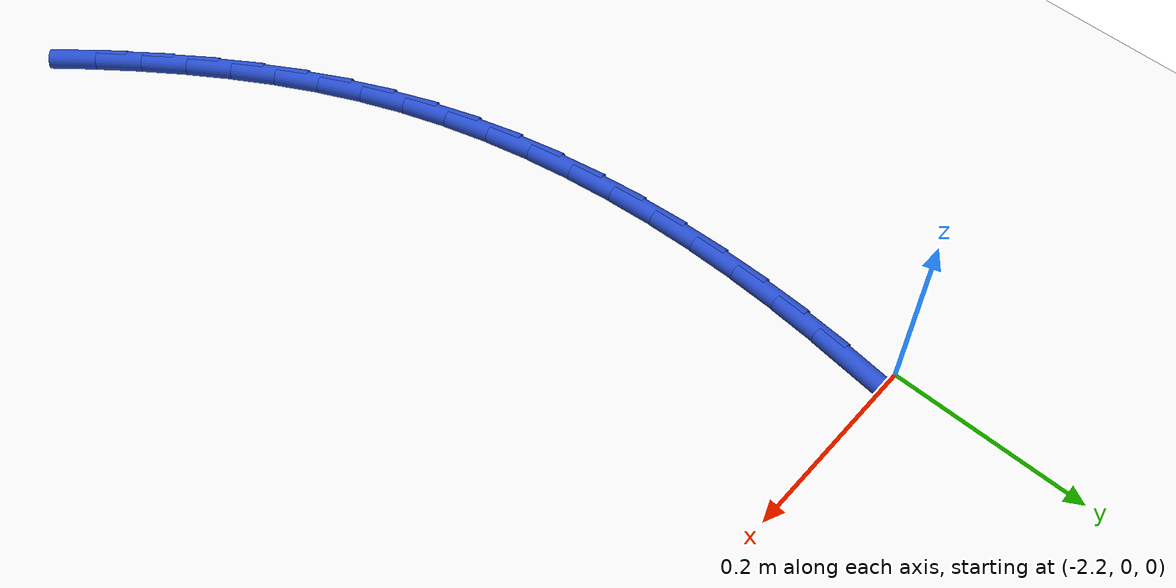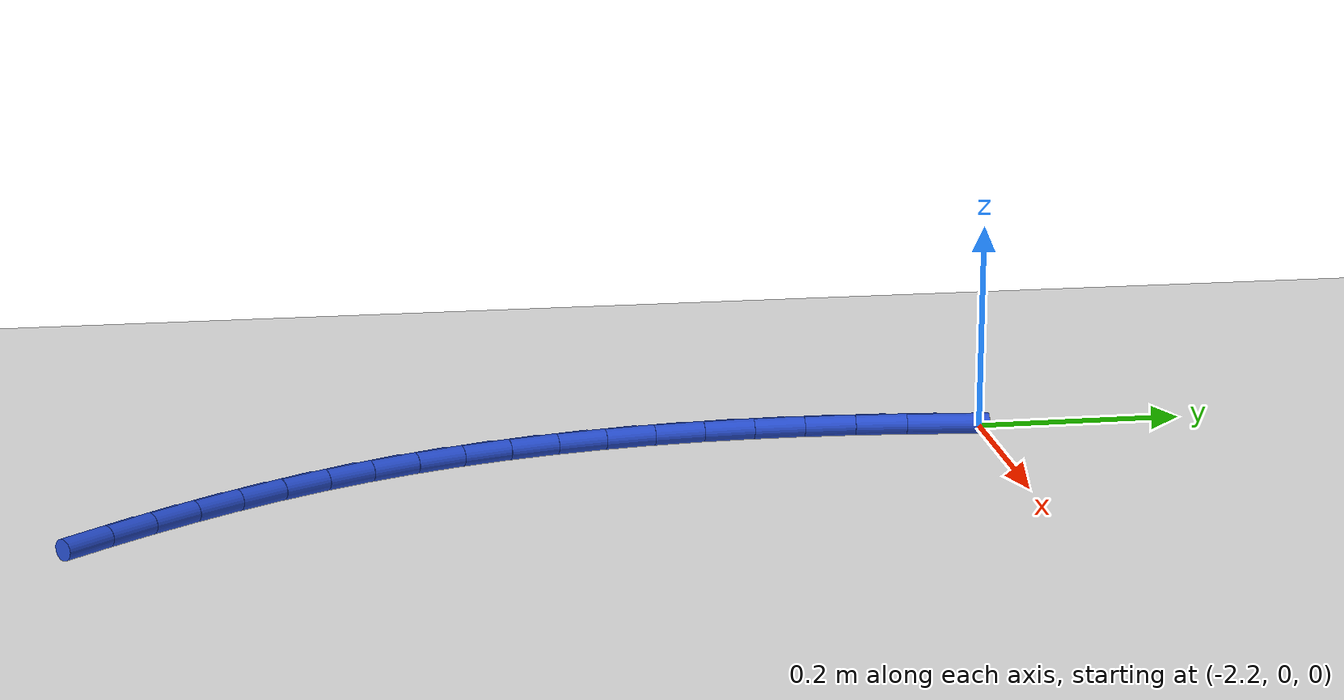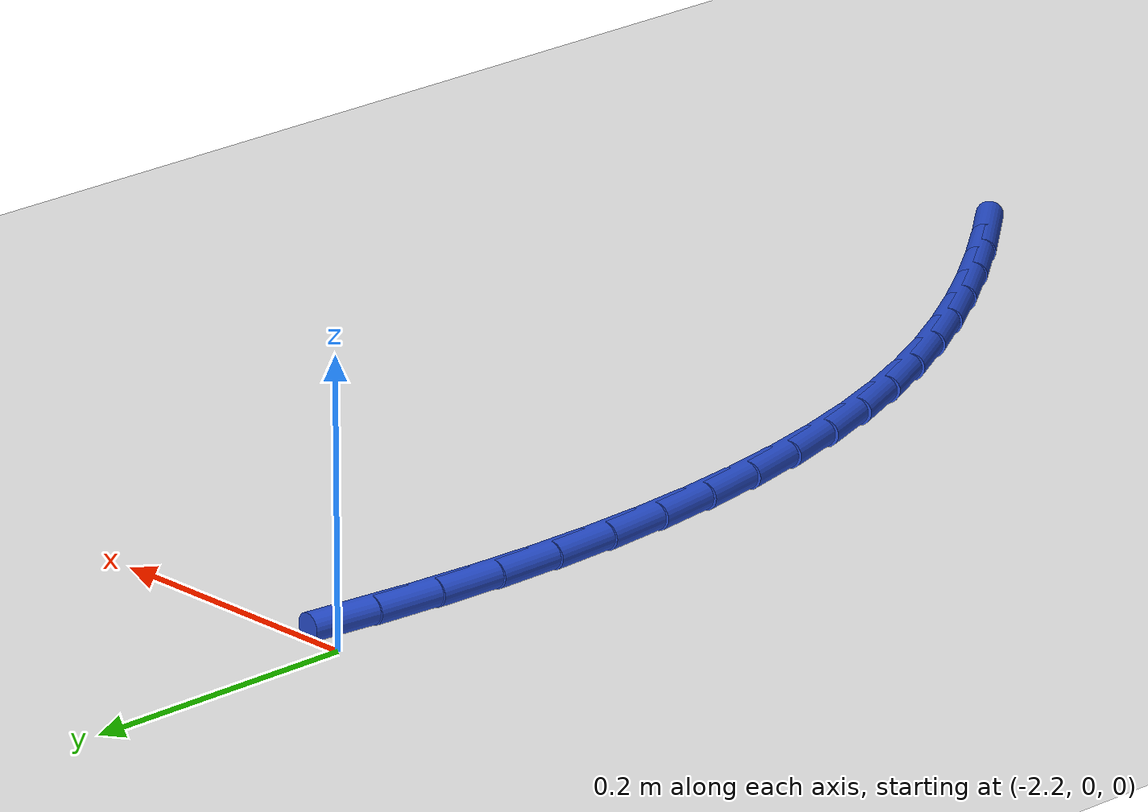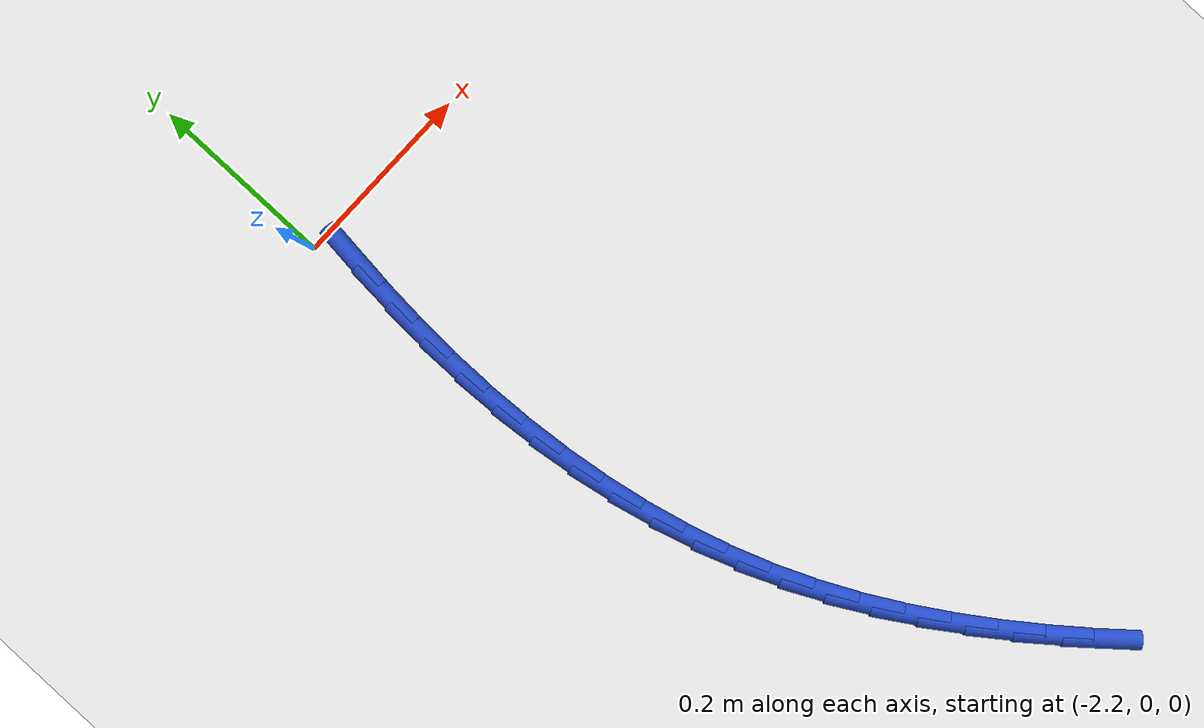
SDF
<sdf version="1.6">
 <world name="default">
  <model name="ground_plane">
   <static>1</static>
   <link name="link">
    <collision name="collision">
     <geometry><plane><normal>0 0 1</normal><size>100 100</size></plane></geometry>
     <surface><friction><ode><mu>100</mu><mu2>50</mu2></ode></friction></surface>
    </collision>
    <visual name="visual">
     <cast_shadows>0</cast_shadows>
     <geometry><plane><normal>0 0 1</normal><size>100 100</size></plane></geometry>
     <material>
      <script><uri>file://media/materials/scripts/gazebo.material</uri><name>Gazebo/WhiteGlow</name></script>
     </material>
    </visual>
   </link>
  </model>
  <model name="line">
   <link name="link_74">
    <pose>-2.179107561892389 -0.03667436788519777 0.01 0 1.57 1.4642731383805496</pose>
    <collision name="collision">
     <geometry><cylinder><radius>0.01</radius><length>0.08</length></cylinder></geometry>
    </collision>
    <visual name="visual">
     <material>
      <script><name>Gazebo/Blue</name><uri>file://media/materials/scripts/gazebo.material</uri></script>
     </material>
     <geometry><cylinder><radius>0.01</radius><length>0.08</length></cylinder></geometry>
    </visual>
   </link>
   <link name="link_75">
    <pose>-2.184430824179241 -0.08645801057269958 0.01 0 1.57 1.500933101270726</pose>
    <collision name="collision">
     <geometry><cylinder><radius>0.01</radius><length>0.08</length></cylinder></geometry>
    </collision>
    <visual name="visual">
     <material>
      <script><name>Gazebo/Blue</name><uri>file://media/materials/scripts/gazebo.material</uri></script>
     </material>
     <geometry><cylinder><radius>0.01</radius><length>0.08</length></cylinder></geometry>
    </visual>
   </link>
   <link name="link_76">
    <pose>-2.1879079865013322 -0.13614800501027435 0.01 0 1.57 1.539157310136114</pose>
    <collision name="collision">
     <geometry><cylinder><radius>0.01</radius><length>0.08</length></cylinder></geometry>
    </collision>
    <visual name="visual">
     <material>
      <script><name>Gazebo/Blue</name><uri>file://media/materials/scripts/gazebo.material</uri></script>
     </material>
     <geometry><cylinder><radius>0.01</radius><length>0.08</length></cylinder></geometry>
    </visual>
   </link>
   <link name="link_77">
    <pose>-2.189474379603518 -0.1856397580799476 0.01 0 1.57 -1.5624807151453546</pose>
    <collision name="collision">
     <geometry><cylinder><radius>0.01</radius><length>0.08</length></cylinder></geometry>
    </collision>
    <visual name="visual">
     <material>
      <script><name>Gazebo/Blue</name><uri>file://media/materials/scripts/gazebo.material</uri></script>
     </material>
     <geometry><cylinder><radius>0.01</radius><length>0.08</length></cylinder></geometry>
    </visual>
   </link>
   <link name="link_78">
    <pose>-2.189065334230657 -0.2348286766637447 0.01 0 1.57 -1.5206318423175194</pose>
    <collision name="collision">
     <geometry><cylinder><radius>0.01</radius><length>0.08</length></cylinder></geometry>
    </collision>
    <visual name="visual">
     <material>
      <script><name>Gazebo/Blue</name><uri>file://media/materials/scripts/gazebo.material</uri></script>
     </material>
     <geometry><cylinder><radius>0.01</radius><length>0.08</length></cylinder></geometry>
    </visual>
   </link>
   <link name="link_79">
    <pose>-2.186616181127607 -0.2836101676436934 0.01 0 1.57 -1.476730852269604</pose>
    <collision name="collision">
     <geometry><cylinder><radius>0.01</radius><length>0.08</length></cylinder></geometry>
    </collision>
    <visual name="visual">
     <material>
      <script><name>Gazebo/Blue</name><uri>file://media/materials/scripts/gazebo.material</uri></script>
     </material>
     <geometry><cylinder><radius>0.01</radius><length>0.08</length></cylinder></geometry>
    </visual>
   </link>
   <link name="link_80">
    <pose>-2.182062251039225 -0.33187963790181824 0.01 0 1.57 -1.4306307826380125</pose>
    <collision name="collision">
     <geometry><cylinder><radius>0.01</radius><length>0.08</length></cylinder></geometry>
    </collision>
    <visual name="visual">
     <material>
      <script><name>Gazebo/Blue</name><uri>file://media/materials/scripts/gazebo.material</uri></script>
     </material>
     <geometry><cylinder><radius>0.01</radius><length>0.08</length></cylinder></geometry>
    </visual>
   </link>
   <link name="link_81">
    <pose>-2.1753388747103677 -0.3795324943201468 0.01 0 1.57 -1.3822020659930077</pose>
    <collision name="collision">
     <geometry><cylinder><radius>0.01</radius><length>0.08</length></cylinder></geometry>
    </collision>
    <visual name="visual">
     <material>
      <script><name>Gazebo/Blue</name><uri>file://media/materials/scripts/gazebo.material</uri></script>
     </material>
     <geometry><cylinder><radius>0.01</radius><length>0.08</length></cylinder></geometry>
    </visual>
   </link>
   <link name="link_82">
    <pose>-2.166381382885893 -0.4264641437807044 0.01 0 1.57 -1.3313406291985848</pose>
    <collision name="collision">
     <geometry><cylinder><radius>0.01</radius><length>0.08</length></cylinder></geometry>
    </collision>
    <visual name="visual">
     <material>
      <script><name>Gazebo/Blue</name><uri>file://media/materials/scripts/gazebo.material</uri></script>
     </material>
     <geometry><cylinder><radius>0.01</radius><length>0.08</length></cylinder></geometry>
    </visual>
   </link>
   <link name="link_83">
    <pose>-2.155125106310659 -0.4725699931655164 0.01 0 1.57 -1.2779775386287648</pose>
    <collision name="collision">
     <geometry><cylinder><radius>0.01</radius><length>0.08</length></cylinder></geometry>
    </collision>
    <visual name="visual">
     <material>
      <script><name>Gazebo/Blue</name><uri>file://media/materials/scripts/gazebo.material</uri></script>
     </material>
     <geometry><cylinder><radius>0.01</radius><length>0.08</length></cylinder></geometry>
    </visual>
   </link>
   <link name="link_84">
    <pose>-2.141505375729521 -0.5177454493566105 0.01 0 1.57 -1.2220898764071553</pose>
    <collision name="collision">
     <geometry><cylinder><radius>0.01</radius><length>0.08</length></cylinder></geometry>
    </collision>
    <visual name="visual">
     <material>
      <script><name>Gazebo/Blue</name><uri>file://media/materials/scripts/gazebo.material</uri></script>
     </material>
     <geometry><cylinder><radius>0.01</radius><length>0.08</length></cylinder></geometry>
    </visual>
   </link>
   <link name="link_85">
    <pose>-2.1254575218873386 -0.5618859192360112 0.01 0 1.57 -1.1642877581734437</pose>
    <collision name="collision">
     <geometry><cylinder><radius>0.01</radius><length>0.08</length></cylinder></geometry>
    </collision>
    <visual name="visual">
     <material>
      <script><name>Gazebo/Blue</name><uri>file://media/materials/scripts/gazebo.material</uri></script>
     </material>
     <geometry><cylinder><radius>0.01</radius><length>0.08</length></cylinder></geometry>
    </visual>
   </link>
   <link name="link_86">
    <pose>-2.106937928639904 -0.604906067989191 0.01 0 1.57 -1.108700766443837</pose>
    <collision name="collision">
     <geometry><cylinder><radius>0.01</radius><length>0.08</length></cylinder></geometry>
    </collision>
    <visual name="visual">
     <material>
      <script><name>Gazebo/Blue</name><uri>file://media/materials/scripts/gazebo.material</uri></script>
     </material>
     <geometry><cylinder><radius>0.01</radius><length>0.08</length></cylinder></geometry>
    </visual>
   </link>
   <link name="link_87">
    <pose>-2.086046399784559 -0.6468517539902562 0.01 0 1.57 -1.0573465957903803</pose>
    <collision name="collision">
     <geometry><cylinder><radius>0.01</radius><length>0.08</length></cylinder></geometry>
    </collision>
    <visual name="visual">
     <material>
      <script><name>Gazebo/Blue</name><uri>file://media/materials/scripts/gazebo.material</uri></script>
     </material>
     <geometry><cylinder><radius>0.01</radius><length>0.08</length></cylinder></geometry>
    </visual>
   </link>
   <link name="link_88">
    <pose>-2.062942547039671 -0.6878235448244603 0.01 0 1.57 -1.0105002901631277</pose>
    <collision name="collision">
     <geometry><cylinder><radius>0.01</radius><length>0.08</length></cylinder></geometry>
    </collision>
    <visual name="visual">
     <material>
      <script><name>Gazebo/Blue</name><uri>file://media/materials/scripts/gazebo.material</uri></script>
     </material>
     <geometry><cylinder><radius>0.01</radius><length>0.08</length></cylinder></geometry>
    </visual>
   </link>
   <link name="link_89">
    <pose>-2.0377861806191366 -0.7279221896505657 0.01 0 1.57 -0.9682970698901311</pose>
    <collision name="collision">
     <geometry><cylinder><radius>0.01</radius><length>0.08</length></cylinder></geometry>
    </collision>
    <visual name="visual">
     <material>
      <script><name>Gazebo/Blue</name><uri>file://media/materials/scripts/gazebo.material</uri></script>
     </material>
     <geometry><cylinder><radius>0.01</radius><length>0.08</length></cylinder></geometry>
    </visual>
   </link>
   <link name="link_90">
    <pose>-2.010737110736854 -0.7672484376273323 0.01 0 1.57 -0.9307643834227988</pose>
    <collision name="collision">
     <geometry><cylinder><radius>0.01</radius><length>0.08</length></cylinder></geometry>
    </collision>
    <visual name="visual">
     <material>
      <script><name>Gazebo/Blue</name><uri>file://media/materials/scripts/gazebo.material</uri></script>
     </material>
     <geometry><cylinder><radius>0.01</radius><length>0.08</length></cylinder></geometry>
    </visual>
   </link>
   <link name="link_91">
    <pose>-1.9819551476067234 -0.8059030379135214 0.01 0 1.57 -0.8978498238383492</pose>
    <collision name="collision">
     <geometry><cylinder><radius>0.01</radius><length>0.08</length></cylinder></geometry>
    </collision>
    <visual name="visual">
     <material>
      <script><name>Gazebo/Blue</name><uri>file://media/materials/scripts/gazebo.material</uri></script>
     </material>
     <geometry><cylinder><radius>0.01</radius><length>0.08</length></cylinder></geometry>
    </visual>
   </link>
   <link name="link_92">
    <pose>-1.9516001014426398 -0.8439867396678942 0.01 0 1.57 -0.8694469621531068</pose>
    <collision name="collision">
     <geometry><cylinder><radius>0.01</radius><length>0.08</length></cylinder></geometry>
    </collision>
    <visual name="visual">
     <material>
      <script><name>Gazebo/Blue</name><uri>file://media/materials/scripts/gazebo.material</uri></script>
     </material>
     <geometry><cylinder><radius>0.01</radius><length>0.08</length></cylinder></geometry>
    </visual>
   </link>
  </model>
 </world>
</sdf>
